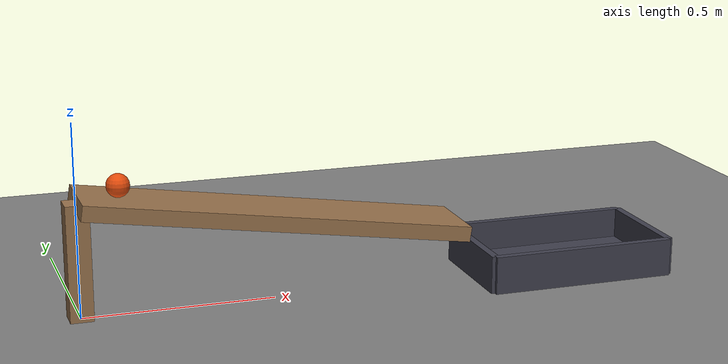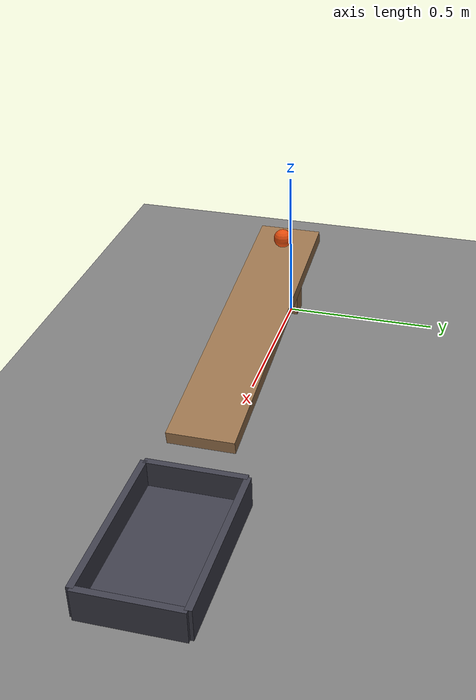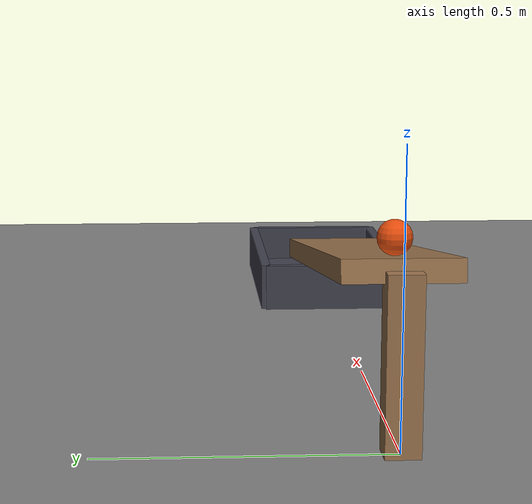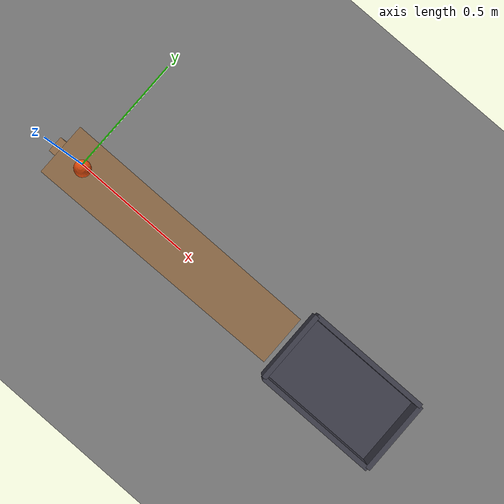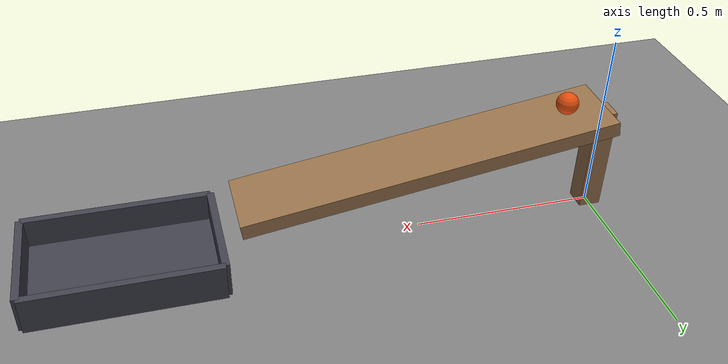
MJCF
<mujoco model="ball_down_a_ramp_into_a_cup">
  <compiler angle="radian"/>
  <option timestep="0.002"/>
  <worldbody>
    <geom name="floor" type="plane" size="8 8 0.1" friction="0.8 0.005 0.002"/>
    <body name="ramp">
      <geom name="ramp_deck" type="box" pos="0.5 0 0.225" size="0.505594 0.1 0.02" euler="0 0.14889 0" friction="0.9 0.005 0.002" rgba="0.6 0.45 0.3 1"/>
      <geom name="ramp_leg" type="box" pos="0 0 0.15" size="0.03 0.03 0.15" friction="0.9 0.005 0.002" rgba="0.6 0.45 0.3 1"/>
    </body>
    <body name="cup">
      <geom name="cup_base" type="box" pos="1.3 0 0.01" size="0.25 0.15 0.01" friction="1 0.02 0.01" solref="0.01 1" rgba="0.25 0.25 0.3 1"/>
      <geom name="cup_near_wall" type="box" pos="1.05 0 0.05" size="0.01 0.15 0.05" friction="1 0.02 0.01" solref="0.01 1" rgba="0.25 0.25 0.3 1"/>
      <geom name="cup_far_wall" type="box" pos="1.55 0 0.05" size="0.01 0.15 0.05" friction="1 0.02 0.01" solref="0.01 1" rgba="0.25 0.25 0.3 1"/>
      <geom name="cup_left_wall" type="box" pos="1.3 0.15 0.05" size="0.25 0.01 0.05" friction="1 0.02 0.01" solref="0.01 1" rgba="0.25 0.25 0.3 1"/>
      <geom name="cup_right_wall" type="box" pos="1.3 -0.15 0.05" size="0.25 0.01 0.05" friction="1 0.02 0.01" solref="0.01 1" rgba="0.25 0.25 0.3 1"/>
    </body>
    <body name="ball" pos="0.106311 0 0.334613">
      <freejoint/>
      <geom name="ball" type="sphere" pos="0 0 0" size="0.03" mass="0.1" condim="6" friction="0.9 0.01 0.005" solref="0.01 1" rgba="0.9 0.3 0.05 1"/>
    </body>
  </worldbody>
  <keyframe>
    <key name="start" qpos="0.106311 0 0.334613 1 0 0 0" qvel="0 0 0 0 0 0"/>
  </keyframe>
</mujoco>
